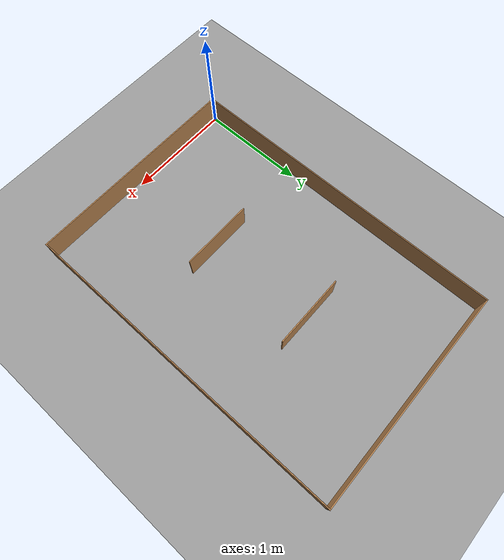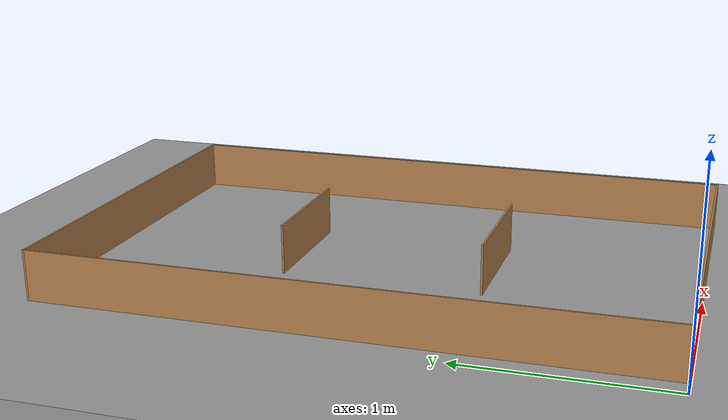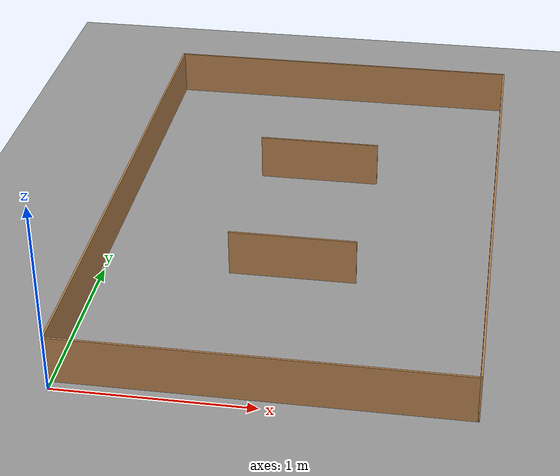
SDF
<sdf version="1.6">
 <world name="default">
  <light name="sun" type="directional">
   <pose>0 0 10 0 -0 0</pose>
   <diffuse>0.8 0.8 0.8 1</diffuse>
   <specular>0.2 0.2 0.2 1</specular>
   <attenuation>
    <range>1000</range>
    <constant>0.9</constant>
    <linear>0.01</linear>
    <quadratic>0.001</quadratic>
   </attenuation>
   <direction>-0.5 0.1 -0.9</direction>
  </light>
  <model name="ground_plane">
   <static>1</static>
   <link name="link">
    <collision name="collision">
     <geometry><plane><normal>0 0 1</normal><size>100 100</size></plane></geometry>
     <surface><friction><ode><mu>100</mu><mu2>50</mu2></ode></friction></surface>
    </collision>
    <visual name="visual">
     <cast_shadows>0</cast_shadows>
     <geometry><plane><normal>0 0 1</normal><size>100 100</size></plane></geometry>
     <material>
      <script><uri>file://media/materials/scripts/gazebo.material</uri><name>Gazebo/Grey</name></script>
     </material>
    </visual>
   </link>
  </model>
  <gravity>0 0 -9.8</gravity>
  <magnetic_field>6e-06 2.3e-05 -4.2e-05</magnetic_field>
  <atmosphere type="adiabatic"/>
  <physics name="default_physics" default="0" type="ode">
   <max_step_size>0.001</max_step_size>
   <real_time_factor>1</real_time_factor>
   <real_time_update_rate>1000</real_time_update_rate>
  </physics>
  <scene><ambient>0.4 0.4 0.4 1</ambient><background>0.7 0.7 0.7 1</background><shadows>1</shadows></scene>
  <spherical_coordinates>
   <surface_model>EARTH_WGS84</surface_model>
   <latitude_deg>0</latitude_deg>
   <longitude_deg>0</longitude_deg>
   <elevation>0</elevation>
   <heading_deg>0</heading_deg>
  </spherical_coordinates>
  <model name="map_wall65_nocenterwall">
   <pose>1 1.5 0 0 -0 0</pose>
   <link name="Wall_0">
    <collision name="Wall_0_Collision">
     <geometry><box><size>2.01 0.01 0.3</size></box></geometry>
     <pose>0 0 0.15 0 -0 0</pose>
    </collision>
    <visual name="Wall_0_Visual">
     <pose>0 0 0.15 0 -0 0</pose>
     <geometry><box><size>2.01 0.01 0.3</size></box></geometry>
     <material>
      <script><uri>file://media/materials/scripts/gazebo.material</uri><name>Gazebo/Wood</name></script>
      <ambient>1 1 1 1</ambient>
     </material>
    </visual>
    <pose>0 -1.5 0 0 -0 0</pose>
   </link>
   <link name="Wall_11">
    <collision name="Wall_11_Collision">
     <geometry><box><size>0.66 0.01 0.3</size></box></geometry>
     <pose>0 0 0.15 0 -0 0</pose>
    </collision>
    <visual name="Wall_11_Visual">
     <pose>0 0 0.15 0 -0 0</pose>
     <geometry><box><size>0.66 0.01 0.3</size></box></geometry>
     <material>
      <script><uri>file://media/materials/scripts/gazebo.material</uri><name>Gazebo/Wood</name></script>
      <ambient>1 1 1 1</ambient>
     </material>
    </visual>
    <pose>0 -0.5 0 0 -0 0</pose>
   </link>
   <link name="Wall_14">
    <collision name="Wall_14_Collision">
     <geometry><box><size>0.66 0.01 0.3</size></box></geometry>
     <pose>0 0 0.15 0 -0 0</pose>
    </collision>
    <visual name="Wall_14_Visual">
     <pose>0 0 0.15 0 -0 0</pose>
     <geometry><box><size>0.66 0.01 0.3</size></box></geometry>
     <material>
      <script><uri>file://media/materials/scripts/gazebo.material</uri><name>Gazebo/Wood</name></script>
      <ambient>1 1 1 1</ambient>
     </material>
    </visual>
    <pose>0 0.5 0 0 -0 0</pose>
   </link>
   <link name="Wall_7">
    <collision name="Wall_7_Collision">
     <geometry><box><size>3.01 0.01 0.3</size></box></geometry>
     <pose>0 0 0.15 0 -0 0</pose>
    </collision>
    <visual name="Wall_7_Visual">
     <pose>0 0 0.15 0 -0 0</pose>
     <geometry><box><size>3.01 0.01 0.3</size></box></geometry>
     <material>
      <script><uri>file://media/materials/scripts/gazebo.material</uri><name>Gazebo/Wood</name></script>
      <ambient>1 1 1 1</ambient>
     </material>
    </visual>
    <pose>1 0 0 0 -0 1.5708</pose>
   </link>
   <link name="Wall_8">
    <collision name="Wall_8_Collision">
     <geometry><box><size>2.01 0.01 0.3</size></box></geometry>
     <pose>0 0 0.15 0 -0 0</pose>
    </collision>
    <visual name="Wall_8_Visual">
     <pose>0 0 0.15 0 -0 0</pose>
     <geometry><box><size>2.01 0.01 0.3</size></box></geometry>
     <material>
      <script><uri>file://media/materials/scripts/gazebo.material</uri><name>Gazebo/Wood</name></script>
      <ambient>1 1 1 1</ambient>
     </material>
    </visual>
    <pose>0 1.5 0 0 -0 3.14159</pose>
   </link>
   <link name="Wall_9">
    <collision name="Wall_9_Collision">
     <geometry><box><size>3.01 0.01 0.3</size></box></geometry>
     <pose>0 0 0.15 0 -0 0</pose>
    </collision>
    <visual name="Wall_9_Visual">
     <pose>0 0 0.15 0 -0 0</pose>
     <geometry><box><size>3.01 0.01 0.3</size></box></geometry>
     <material>
      <script><uri>file://media/materials/scripts/gazebo.material</uri><name>Gazebo/Wood</name></script>
      <ambient>1 1 1 1</ambient>
     </material>
    </visual>
    <pose>-1 0 0 0 0 -1.5708</pose>
   </link>
   <static>1</static>
  </model>
  <model name="ground_plane_0">
   <static>1</static>
   <link name="link">
    <collision name="collision">
     <geometry><plane><normal>0 0 1</normal><size>100 100</size></plane></geometry>
     <surface><friction><ode><mu>100</mu><mu2>50</mu2></ode></friction></surface>
    </collision>
    <visual name="visual">
     <cast_shadows>0</cast_shadows>
     <geometry><plane><normal>0 0 1</normal><size>100 100</size></plane></geometry>
     <material>
      <script><uri>file://media/materials/scripts/gazebo.material</uri><name>Gazebo/Grey</name></script>
     </material>
    </visual>
   </link>
   <pose>-0.590506 2.94267 0 0 -0 0</pose>
  </model>
 </world>
</sdf>
